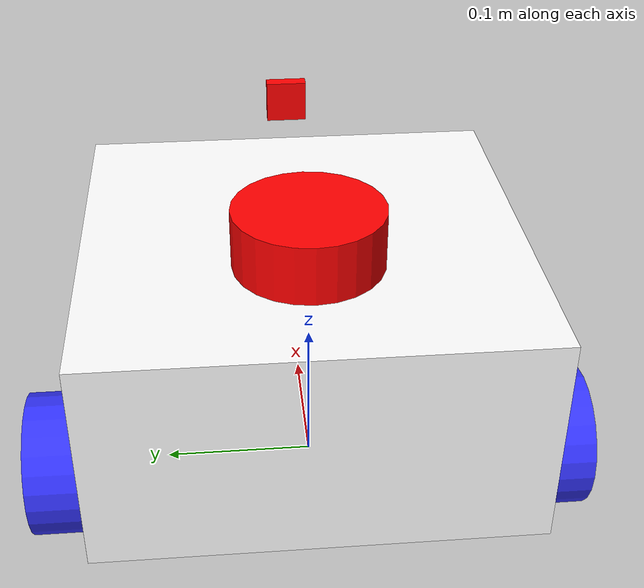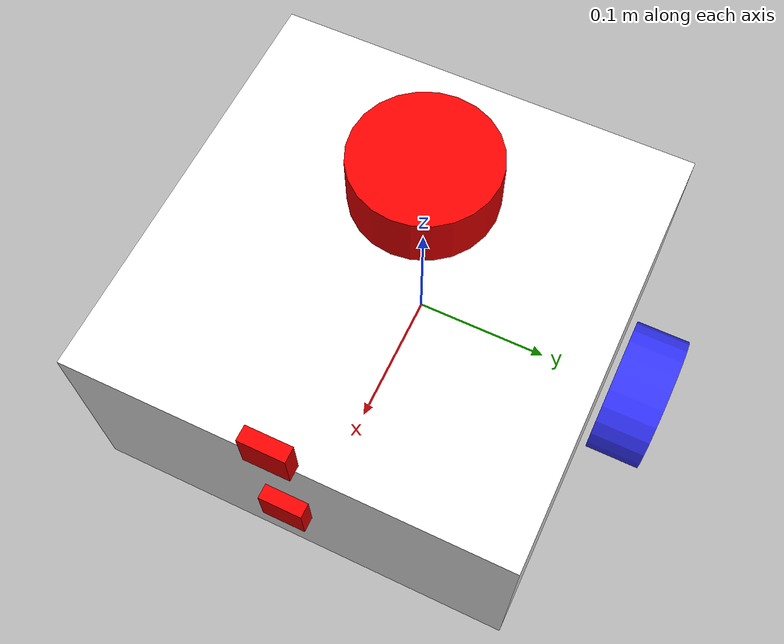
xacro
<?xml version="1.0"?>
<robot xmlns:xacro="http://www.ros.org/wiki/xacro"  name="robot">

    <xacro:include filename="robot_core.xacro"/>
    <xacro:include filename="gazebo_control.xacro"/>
    <xacro:include filename="lidar.xacro"/>
    <xacro:include filename="camera.xacro"/>
    <xacro:include filename="depth_camera.xacro"/>
</robot>

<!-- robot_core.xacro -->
<robot xmlns:xacro="http://www.ros.org/wiki/xacro">

    <xacro:include filename="inertial_macros.xacro"/>

    <material name="white">
        <color rgba="1 1 1 1"/>
    </material>

    <material name="orange">
        <color rgba="1 0.3 0.1 1"/>
    </material>

    <material name="blue">
        <color rgba="0.2 0.2 1 1"/>
    </material>

    <material name="black">
        <color rgba="0 0 0 1"/>
    </material>

    <material name="red">
        <color rgba="1 0 0 1"/>
    </material>

    <!-- BASE LINK -->
    <link name="base_link">

    </link>

    <!-- BASE FOOTPRINT LINK  -->

    <joint name="base_footprint_link" type="fixed">
        <parent link="base_link"/>
        <child link="base_footprint"/>
        <origin xyz="0 0 0" rpy="0 0 0"/>
    </joint>

    <link name="base_footprint">
    </link>

    <!-- CHASSIS LINK  -->

    <joint name="chassis_joint" type="fixed">
        <parent link="base_link"/>
        <child link="chassis"/>
        <origin xyz="-0.1 0 0"/>
    </joint>

    <link name="chassis">
        <visual>
            <origin xyz="0.15 0 0.075"/>
            <geometry>
                <box size="0.3 0.3 0.15"/>
            </geometry>
            <material name="white"/>
        </visual>
        <collision>
            <origin xyz="0.15 0 0.075"/>
            <geometry>
                <box size="0.3 0.3 0.15"/>
            </geometry>
        </collision>
        <xacro:inertial_box mass="0.5" x="0.3" y="0.3" z="0.15">
            <origin xyz="0.15 0 0.075" rpy="0 0 0"/>
        </xacro:inertial_box>
    </link>

    <gazebo reference="chassis">
        <material>Gazebo/White</material>
    </gazebo>

    <!-- LEFT WHEEL LINK -->
    <joint name="left_wheel_joint" type="continuous">
        <parent link="base_link"/>
        <child link="left_wheel"/>
        <origin xyz="0 0.175 0" rpy="-${pi/2} 0 0"/>
        <axis xyz="0 0 1"/>
    </joint>

    <link name="left_wheel">
        <visual>
            <geometry>
                <cylinder radius="0.05" length="0.04"/>
            </geometry>
            <material name="blue"/>
        </visual>
        <collision>
            <geometry>
                <sphere radius="0.05"/>
            </geometry>
        </collision>
        <xacro:inertial_cylinder mass="0.1" length="0.04" radius="0.05">
            <origin xyz="0 0 0" rpy="0 0 0"/>
        </xacro:inertial_cylinder>
    </link>
    <gazebo reference="left_wheel">
        <material>Gazebo/Blue</material>
    </gazebo>

    <!-- RIGHT WHEEL LINK -->
    <joint name="right_wheel_joint" type="continuous">
        <parent link="base_link"/>
        <child link="right_wheel"/>
        <origin xyz="0 -0.175 0" rpy="${pi/2} 0 0"/>
        <axis xyz="0 0 -1"/>
    </joint>

    <link name="right_wheel">
        <visual>
            <geometry>
                <cylinder radius="0.05" length="0.04"/>
            </geometry>
            <material name="blue"/>
        </visual>
        <collision>
            <geometry>
                <sphere radius="0.05"/>
            </geometry>
        </collision>
        <xacro:inertial_cylinder mass="0.1" length="0.04" radius="0.05">
            <origin xyz="0 0 0" rpy="0 0 0"/>
        </xacro:inertial_cylinder>
    </link>

    <gazebo reference="right_wheel">
        <material>Gazebo/Blue</material>
    </gazebo>

    <!-- single wheel link -->

    <!-- CASTER WHEEL LINK -->
    <joint name="caster_wheel_joint" type="fixed">
        <parent link="chassis"/>
        <child link="caster_wheel"/>
        <origin xyz="0.24 0 0"/>
    </joint>

    <link name="caster_wheel">
        <visual>
            <geometry>
                <sphere radius="0.05"/>
            </geometry>
            <material name="black"/>
        </visual>
        <collision>
            <geometry>
                <sphere radius="0.05"/>
            </geometry>
        </collision>
        <xacro:inertial_sphere mass="0.1" radius="0.05">
            <origin xyz="0 0 0" rpy="0 0 0"/>
        </xacro:inertial_sphere>
    </link>

    <gazebo reference="caster_wheel">
        <material>Gazebo/Black</material>
        <mu1 value="0.001"/>
        <mu2 value="0.001"/>
    </gazebo>

</robot>

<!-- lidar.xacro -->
<robot xmlns:xacro="http://www.ros.org/wiki/xacro">

    <joint name="laser_joint" type="fixed">
        <parent link="chassis"/>
        <child link="laser_frame"/>
        <origin xyz="0.1 0 0.175" rpy="0 0 0"/>
    </joint>

    <link name="laser_frame">
        <visual>
            <geometry>
                <cylinder radius="0.05" length="0.04"/>
            </geometry>
            <material name="red"/>
        </visual>
        <collision>
            <geometry>
                <cylinder radius="0.05" length="0.04"/>
            </geometry>
        </collision>
        <xacro:inertial_cylinder mass="0.1" length="0.04" radius="0.05">
            <origin xyz="0 0 0" rpy="0 0 0"/>
        </xacro:inertial_cylinder>
    </link>

    <gazebo reference="laser_frame">
        <material>Gazebo/Red</material>

        <sensor name="laser" type="ray">
            <pose> 0 0 0 0 0 0 </pose>
            <visualize>false</visualize>
            <update_rate>10</update_rate>
            <ray>
                <scan>
                    <horizontal>
                        <samples>360</samples>
                        <min_angle>-3.14</min_angle>
                        <max_angle>3.14</max_angle>
                    </horizontal>
                </scan>
                <range>
                    <min>0.3</min>
                    <max>12</max>
                </range>
            </ray>
            <plugin name="laser_controller" filename="libgazebo_ros_ray_sensor.so">
                <ros>
                    <argument>--remap ~/out:=scan</argument>
                </ros>
                <output_type>sensor_msgs/LaserScan</output_type>
                <frame_name>laser_frame</frame_name>
            </plugin>
        </sensor>
    </gazebo>

</robot>

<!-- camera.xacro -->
<robot xmlns:xacro="http://www.ros.org/wiki/xacro">

    <joint name="camera_joint" type="fixed">
        <parent link="chassis"/>
        <child link="camera_link"/>
        <origin xyz="0.305 0 0.08" rpy="0 0 0"/>
    </joint>

    <link name="camera_link">
        <visual>
            <geometry>
                <box size="0.01 0.03 0.03"/>
            </geometry>
            <material name="red"/>
        </visual>
        <collision>
            <geometry>
                <box size="0.01 0.03 0.03"/>
            </geometry>
        </collision>
        <xacro:inertial_box mass="0.05" x="0.01" y="0.03" z="0.03">
            <origin xyz="0 0 0" rpy="0 0 0"/>
        </xacro:inertial_box>
    </link>

    <joint name="camera_optical_joint" type="fixed">
        <parent link="camera_link"/>
        <child link="camera_link_optical"/>
        <origin xyz="0 0 0" rpy="${-pi/2} 0 ${-pi/2}"/>
    </joint>

    <link name="camera_link_optical"></link>

    <gazebo reference="camera_link">
        <material>Gazebo/Red</material>

        <sensor name="camera" type="camera">
            <pose> 0 0 0 0 0 0 </pose>
            <visualize>true</visualize>
            <update_rate>10</update_rate>
            <camera>
                <horizontal_fov>1.089</horizontal_fov>
                <image>
                    <format>R8B8G8</format>
                    <width>640</width>
                    <height>480</height>
                </image>
                <clip>
                    <near>0.05</near>
                    <far>8.0</far>
                </clip>
            </camera>
            <plugin name="camera_controller" filename="libgazebo_ros_camera.so">
                <frame_name>camera_link_optical</frame_name>
            </plugin>
        </sensor>
    </gazebo>

</robot>

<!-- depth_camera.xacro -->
<robot xmlns:xacro="http://www.ros.org/wiki/xacro">

    <joint name="depth_camera_joint" type="fixed">
        <parent link="chassis"/>
        <child link="depth_camera_link"/>
        <origin xyz="0.305 0 0.18" rpy="0 0 0"/>
    </joint>

    <link name="depth_camera_link">
        <visual>
            <geometry>
                <box size="0.01 0.03 0.03"/>
            </geometry>
            <material name="red"/>
        </visual>
        <collision>
            <geometry>
                <box size="0.01 0.03 0.03"/>
            </geometry>
        </collision>
        <xacro:inertial_box mass="0.05" x="0.01" y="0.03" z="0.03">
            <origin xyz="0 0 0" rpy="0 0 0"/>
        </xacro:inertial_box>
    </link>

    <joint name="depth_camera_optical_joint" type="fixed">
        <parent link="depth_camera_link"/>
        <child link="depth_camera_link_optical"/>
        <origin xyz="0 0 0" rpy="${-pi/2} 0 ${-pi/2}"/>
    </joint>

    <link name="depth_camera_link_optical"></link>

    <gazebo reference="depth_camera_link">
        <material>Gazebo/Red</material>

        <sensor name="depth_camera" type="depth">
            <pose> 0 0 0 0 0 0 </pose>
            <visualize>true</visualize>
            <update_rate>10</update_rate>
            <camera>
                <horizontal_fov>1.089</horizontal_fov>
                <image>
                    <format>R8B8G8</format>
                    <width>640</width>
                    <height>480</height>
                </image>
                <clip>
                    <near>0.05</near>
                    <far>8.0</far>
                </clip>
            </camera>
            <plugin name="depth_camera_controller" filename="libgazebo_ros_camera.so">
                <frame_name>depth_camera_link_optical</frame_name>
                <min_depth>0.1</min_depth>
                <max_depth>14</max_depth>
            </plugin>
        </sensor>
    </gazebo>

</robot>
